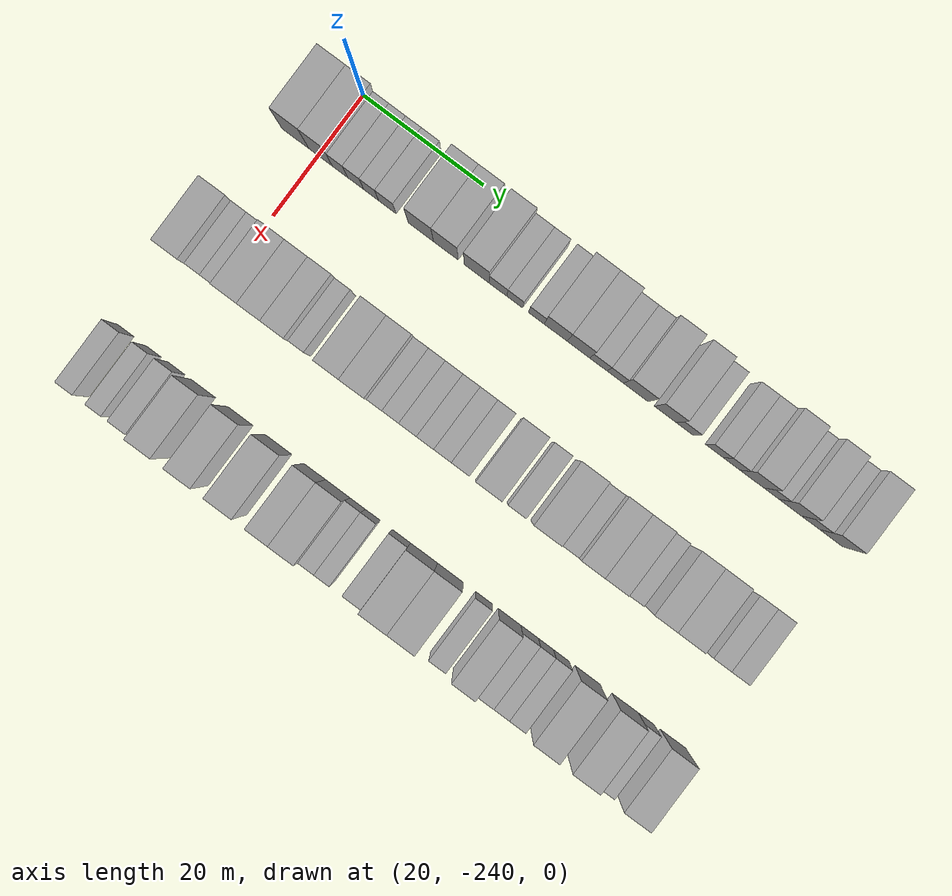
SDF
<sdf version="1.6">
 <world name="default">
  <model name="building_1">
   <static>1</static>
   <pose>25.0000 -243.7669 0 0.000000 0.000000 0.000000</pose>
   <link name="link">
    <pose>0 0 4.50 0 0 0</pose>
    <collision name="collision"><geometry><box><size>10.0000 4.4663 9.0000</size></box></geometry></collision>
    <visual name="visual">
     <cast_shadows>0</cast_shadows>
     <geometry><box><size>10.0000 4.4663 9.0000</size></box></geometry>
     <material>
      <script>
       <uri>model://HANNAS_wall/materials/scripts</uri>
       <uri>model://HANNAS_wall/materials/textures</uri>
       <name>vrc/HANNAS_wall</name>
      </script>
     </material>
    </visual>
   </link>
  </model>
  <model name="building_2">
   <static>1</static>
   <pose>25.0000 -239.5930 0 0.000000 0.000000 0.000000</pose>
   <link name="link">
    <pose>0 0 4.50 0 0 0</pose>
    <collision name="collision"><geometry><box><size>10.0000 3.8815 9.0000</size></box></geometry></collision>
    <visual name="visual">
     <cast_shadows>0</cast_shadows>
     <geometry><box><size>10.0000 3.8815 9.0000</size></box></geometry>
     <material>
      <script>
       <uri>model://HANNAS_wall/materials/scripts</uri>
       <uri>model://HANNAS_wall/materials/textures</uri>
       <name>vrc/HANNAS_wall</name>
      </script>
     </material>
    </visual>
   </link>
  </model>
  <model name="building_3">
   <static>1</static>
   <pose>25.0000 -236.3804 0 0.000000 0.000000 0.000000</pose>
   <link name="link">
    <pose>0 0 3.00 0 0 0</pose>
    <collision name="collision"><geometry><box><size>10.0000 2.5437 6.0000</size></box></geometry></collision>
    <visual name="visual">
     <cast_shadows>0</cast_shadows>
     <geometry><box><size>10.0000 2.5437 6.0000</size></box></geometry>
     <material>
      <script>
       <uri>model://HANNAS_wall/materials/scripts</uri>
       <uri>model://HANNAS_wall/materials/textures</uri>
       <name>vrc/HANNAS_wall</name>
      </script>
     </material>
    </visual>
   </link>
  </model>
  <model name="building_4">
   <static>1</static>
   <pose>25.0000 -233.7619 0 0.000000 0.000000 0.000000</pose>
   <link name="link">
    <pose>0 0 3.00 0 0 0</pose>
    <collision name="collision"><geometry><box><size>10.0000 2.6932 6.0000</size></box></geometry></collision>
    <visual name="visual">
     <cast_shadows>0</cast_shadows>
     <geometry><box><size>10.0000 2.6932 6.0000</size></box></geometry>
     <material>
      <script>
       <uri>model://HANNAS_wall/materials/scripts</uri>
       <uri>model://HANNAS_wall/materials/textures</uri>
       <name>vrc/HANNAS_wall</name>
      </script>
     </material>
    </visual>
   </link>
  </model>
  <model name="building_5">
   <static>1</static>
   <pose>25.0000 -231.1787 0 0.000000 0.000000 0.000000</pose>
   <link name="link">
    <pose>0 0 3.00 0 0 0</pose>
    <collision name="collision"><geometry><box><size>10.0000 2.4733 6.0000</size></box></geometry></collision>
    <visual name="visual">
     <cast_shadows>0</cast_shadows>
     <geometry><box><size>10.0000 2.4733 6.0000</size></box></geometry>
     <material>
      <script>
       <uri>model://HANNAS_wall/materials/scripts</uri>
       <uri>model://HANNAS_wall/materials/textures</uri>
       <name>vrc/HANNAS_wall</name>
      </script>
     </material>
    </visual>
   </link>
  </model>
  <model name="building_6">
   <static>1</static>
   <pose>25.0000 -228.4949 0 0.000000 0.000000 0.000000</pose>
   <link name="link">
    <pose>0 0 3.00 0 0 0</pose>
    <collision name="collision"><geometry><box><size>10.0000 2.8942 6.0000</size></box></geometry></collision>
    <visual name="visual">
     <cast_shadows>0</cast_shadows>
     <geometry><box><size>10.0000 2.8942 6.0000</size></box></geometry>
     <material>
      <script>
       <uri>model://HANNAS_wall/materials/scripts</uri>
       <uri>model://HANNAS_wall/materials/textures</uri>
       <name>vrc/HANNAS_wall</name>
      </script>
     </material>
    </visual>
   </link>
  </model>
  <model name="building_7">
   <static>1</static>
   <pose>25.0000 -222.9407 0 0.000000 0.000000 0.000000</pose>
   <link name="link">
    <pose>0 0 4.50 0 0 0</pose>
    <collision name="collision"><geometry><box><size>10.0000 4.2143 9.0000</size></box></geometry></collision>
    <visual name="visual">
     <cast_shadows>0</cast_shadows>
     <geometry><box><size>10.0000 4.2143 9.0000</size></box></geometry>
     <material>
      <script>
       <uri>model://HANNAS_wall/materials/scripts</uri>
       <uri>model://HANNAS_wall/materials/textures</uri>
       <name>vrc/HANNAS_wall</name>
      </script>
     </material>
    </visual>
   </link>
  </model>
  <model name="building_8">
   <static>1</static>
   <pose>25.0000 -218.7890 0 0.000000 0.000000 0.000000</pose>
   <link name="link">
    <pose>0 0 4.50 0 0 0</pose>
    <collision name="collision"><geometry><box><size>10.0000 4.0890 9.0000</size></box></geometry></collision>
    <visual name="visual">
     <cast_shadows>0</cast_shadows>
     <geometry><box><size>10.0000 4.0890 9.0000</size></box></geometry>
     <material>
      <script>
       <uri>model://HANNAS_wall/materials/scripts</uri>
       <uri>model://HANNAS_wall/materials/textures</uri>
       <name>vrc/HANNAS_wall</name>
      </script>
     </material>
    </visual>
   </link>
  </model>
  <model name="building_9">
   <static>1</static>
   <pose>25.0000 -213.6994 0 0.000000 0.000000 0.000000</pose>
   <link name="link">
    <pose>0 0 4.50 0 0 0</pose>
    <collision name="collision"><geometry><box><size>10.0000 4.0903 9.0000</size></box></geometry></collision>
    <visual name="visual">
     <cast_shadows>0</cast_shadows>
     <geometry><box><size>10.0000 4.0903 9.0000</size></box></geometry>
     <material>
      <script>
       <uri>model://HANNAS_wall/materials/scripts</uri>
       <uri>model://HANNAS_wall/materials/textures</uri>
       <name>vrc/HANNAS_wall</name>
      </script>
     </material>
    </visual>
   </link>
  </model>
  <model name="building_10">
   <static>1</static>
   <pose>25.0000 -210.1707 0 0.000000 0.000000 0.000000</pose>
   <link name="link">
    <pose>0 0 3.00 0 0 0</pose>
    <collision name="collision"><geometry><box><size>10.0000 2.9671 6.0000</size></box></geometry></collision>
    <visual name="visual">
     <cast_shadows>0</cast_shadows>
     <geometry><box><size>10.0000 2.9671 6.0000</size></box></geometry>
     <material>
      <script>
       <uri>model://HANNAS_wall/materials/scripts</uri>
       <uri>model://HANNAS_wall/materials/textures</uri>
       <name>vrc/HANNAS_wall</name>
      </script>
     </material>
    </visual>
   </link>
  </model>
  <model name="building_11">
   <static>1</static>
   <pose>25.0000 -207.3888 0 0.000000 0.000000 0.000000</pose>
   <link name="link">
    <pose>0 0 3.00 0 0 0</pose>
    <collision name="collision"><geometry><box><size>10.0000 2.5969 6.0000</size></box></geometry></collision>
    <visual name="visual">
     <cast_shadows>0</cast_shadows>
     <geometry><box><size>10.0000 2.5969 6.0000</size></box></geometry>
     <material>
      <script>
       <uri>model://HANNAS_wall/materials/scripts</uri>
       <uri>model://HANNAS_wall/materials/textures</uri>
       <name>vrc/HANNAS_wall</name>
      </script>
     </material>
    </visual>
   </link>
  </model>
  <model name="building_12">
   <static>1</static>
   <pose>25.0000 -203.7824 0 0.000000 0.000000 0.000000</pose>
   <link name="link">
    <pose>0 0 3.00 0 0 0</pose>
    <collision name="collision"><geometry><box><size>10.0000 2.6159 6.0000</size></box></geometry></collision>
    <visual name="visual">
     <cast_shadows>0</cast_shadows>
     <geometry><box><size>10.0000 2.6159 6.0000</size></box></geometry>
     <material>
      <script>
       <uri>model://HANNAS_wall/materials/scripts</uri>
       <uri>model://HANNAS_wall/materials/textures</uri>
       <name>vrc/HANNAS_wall</name>
      </script>
     </material>
    </visual>
   </link>
  </model>
  <model name="building_13">
   <static>1</static>
   <pose>25.0000 -200.5745 0 0.000000 0.000000 0.000000</pose>
   <link name="link">
    <pose>0 0 4.50 0 0 0</pose>
    <collision name="collision"><geometry><box><size>10.0000 3.7997 9.0000</size></box></geometry></collision>
    <visual name="visual">
     <cast_shadows>0</cast_shadows>
     <geometry><box><size>10.0000 3.7997 9.0000</size></box></geometry>
     <material>
      <script>
       <uri>model://HANNAS_wall/materials/scripts</uri>
       <uri>model://HANNAS_wall/materials/textures</uri>
       <name>vrc/HANNAS_wall</name>
      </script>
     </material>
    </visual>
   </link>
  </model>
  <model name="building_14">
   <static>1</static>
   <pose>25.0000 -196.8106 0 0.000000 0.000000 0.000000</pose>
   <link name="link">
    <pose>0 0 4.50 0 0 0</pose>
    <collision name="collision"><geometry><box><size>10.0000 3.7281 9.0000</size></box></geometry></collision>
    <visual name="visual">
     <cast_shadows>0</cast_shadows>
     <geometry><box><size>10.0000 3.7281 9.0000</size></box></geometry>
     <material>
      <script>
       <uri>model://HANNAS_wall/materials/scripts</uri>
       <uri>model://HANNAS_wall/materials/textures</uri>
       <name>vrc/HANNAS_wall</name>
      </script>
     </material>
    </visual>
   </link>
  </model>
  <model name="building_15">
   <static>1</static>
   <pose>25.0000 -193.5161 0 0.000000 0.000000 0.000000</pose>
   <link name="link">
    <pose>0 0 3.00 0 0 0</pose>
    <collision name="collision"><geometry><box><size>10.0000 2.8609 6.0000</size></box></geometry></collision>
    <visual name="visual">
     <cast_shadows>0</cast_shadows>
     <geometry><box><size>10.0000 2.8609 6.0000</size></box></geometry>
     <material>
      <script>
       <uri>model://HANNAS_wall/materials/scripts</uri>
       <uri>model://HANNAS_wall/materials/textures</uri>
       <name>vrc/HANNAS_wall</name>
      </script>
     </material>
    </visual>
   </link>
  </model>
  <model name="building_16">
   <static>1</static>
   <pose>25.0000 -190.7070 0 0.000000 0.000000 0.000000</pose>
   <link name="link">
    <pose>0 0 3.00 0 0 0</pose>
    <collision name="collision"><geometry><box><size>10.0000 2.7572 6.0000</size></box></geometry></collision>
    <visual name="visual">
     <cast_shadows>0</cast_shadows>
     <geometry><box><size>10.0000 2.7572 6.0000</size></box></geometry>
     <material>
      <script>
       <uri>model://HANNAS_wall/materials/scripts</uri>
       <uri>model://HANNAS_wall/materials/textures</uri>
       <name>vrc/HANNAS_wall</name>
      </script>
     </material>
    </visual>
   </link>
  </model>
  <model name="building_17">
   <static>1</static>
   <pose>25.0000 -187.2753 0 0.000000 0.000000 0.000000</pose>
   <link name="link">
    <pose>0 0 4.50 0 0 0</pose>
    <collision name="collision"><geometry><box><size>10.0000 4.1063 9.0000</size></box></geometry></collision>
    <visual name="visual">
     <cast_shadows>0</cast_shadows>
     <geometry><box><size>10.0000 4.1063 9.0000</size></box></geometry>
     <material>
      <script>
       <uri>model://HANNAS_wall/materials/scripts</uri>
       <uri>model://HANNAS_wall/materials/textures</uri>
       <name>vrc/HANNAS_wall</name>
      </script>
     </material>
    </visual>
   </link>
  </model>
  <model name="building_18">
   <static>1</static>
   <pose>25.0000 -182.3998 0 0.000000 0.000000 0.000000</pose>
   <link name="link">
    <pose>0 0 4.50 0 0 0</pose>
    <collision name="collision"><geometry><box><size>10.0000 3.6447 9.0000</size></box></geometry></collision>
    <visual name="visual">
     <cast_shadows>0</cast_shadows>
     <geometry><box><size>10.0000 3.6447 9.0000</size></box></geometry>
     <material>
      <script>
       <uri>model://HANNAS_wall/materials/scripts</uri>
       <uri>model://HANNAS_wall/materials/textures</uri>
       <name>vrc/HANNAS_wall</name>
      </script>
     </material>
    </visual>
   </link>
  </model>
  <model name="building_19">
   <static>1</static>
   <pose>25.0000 -179.1549 0 0.000000 0.000000 0.000000</pose>
   <link name="link">
    <pose>0 0 3.00 0 0 0</pose>
    <collision name="collision"><geometry><box><size>10.0000 2.8449 6.0000</size></box></geometry></collision>
    <visual name="visual">
     <cast_shadows>0</cast_shadows>
     <geometry><box><size>10.0000 2.8449 6.0000</size></box></geometry>
     <material>
      <script>
       <uri>model://HANNAS_wall/materials/scripts</uri>
       <uri>model://HANNAS_wall/materials/textures</uri>
       <name>vrc/HANNAS_wall</name>
      </script>
     </material>
    </visual>
   </link>
  </model>
  <model name="building_20">
   <static>1</static>
   <pose>25.0000 -174.2485 0 0.000000 0.000000 0.000000</pose>
   <link name="link">
    <pose>0 0 3.00 0 0 0</pose>
    <collision name="collision"><geometry><box><size>10.0000 2.9680 6.0000</size></box></geometry></collision>
    <visual name="visual">
     <cast_shadows>0</cast_shadows>
     <geometry><box><size>10.0000 2.9680 6.0000</size></box></geometry>
     <material>
      <script>
       <uri>model://HANNAS_wall/materials/scripts</uri>
       <uri>model://HANNAS_wall/materials/textures</uri>
       <name>vrc/HANNAS_wall</name>
      </script>
     </material>
    </visual>
   </link>
  </model>
  <model name="building_21">
   <static>1</static>
   <pose>25.0000 -171.3698 0 0.000000 0.000000 0.000000</pose>
   <link name="link">
    <pose>0 0 3.00 0 0 0</pose>
    <collision name="collision"><geometry><box><size>10.0000 2.7893 6.0000</size></box></geometry></collision>
    <visual name="visual">
     <cast_shadows>0</cast_shadows>
     <geometry><box><size>10.0000 2.7893 6.0000</size></box></geometry>
     <material>
      <script>
       <uri>model://HANNAS_wall/materials/scripts</uri>
       <uri>model://HANNAS_wall/materials/textures</uri>
       <name>vrc/HANNAS_wall</name>
      </script>
     </material>
    </visual>
   </link>
  </model>
  <model name="building_22">
   <static>1</static>
   <pose>25.0000 -167.9981 0 0.000000 0.000000 0.000000</pose>
   <link name="link">
    <pose>0 0 4.50 0 0 0</pose>
    <collision name="collision"><geometry><box><size>10.0000 3.9542 9.0000</size></box></geometry></collision>
    <visual name="visual">
     <cast_shadows>0</cast_shadows>
     <geometry><box><size>10.0000 3.9542 9.0000</size></box></geometry>
     <material>
      <script>
       <uri>model://HANNAS_wall/materials/scripts</uri>
       <uri>model://HANNAS_wall/materials/textures</uri>
       <name>vrc/HANNAS_wall</name>
      </script>
     </material>
    </visual>
   </link>
  </model>
  <model name="building_23">
   <static>1</static>
   <pose>25.0000 -164.7621 0 0.000000 0.000000 0.000000</pose>
   <link name="link">
    <pose>0 0 3.00 0 0 0</pose>
    <collision name="collision"><geometry><box><size>10.0000 2.5177 6.0000</size></box></geometry></collision>
    <visual name="visual">
     <cast_shadows>0</cast_shadows>
     <geometry><box><size>10.0000 2.5177 6.0000</size></box></geometry>
     <material>
      <script>
       <uri>model://HANNAS_wall/materials/scripts</uri>
       <uri>model://HANNAS_wall/materials/textures</uri>
       <name>vrc/HANNAS_wall</name>
      </script>
     </material>
    </visual>
   </link>
  </model>
  <model name="building_24">
   <static>1</static>
   <pose>25.0000 -161.6389 0 0.000000 0.000000 0.000000</pose>
   <link name="link">
    <pose>0 0 4.50 0 0 0</pose>
    <collision name="collision"><geometry><box><size>10.0000 3.7288 9.0000</size></box></geometry></collision>
    <visual name="visual">
     <cast_shadows>0</cast_shadows>
     <geometry><box><size>10.0000 3.7288 9.0000</size></box></geometry>
     <material>
      <script>
       <uri>model://HANNAS_wall/materials/scripts</uri>
       <uri>model://HANNAS_wall/materials/textures</uri>
       <name>vrc/HANNAS_wall</name>
      </script>
     </material>
    </visual>
   </link>
  </model>
  <model name="building_25">
   <static>1</static>
   <pose>25.0000 -158.2759 0 0.000000 0.000000 0.000000</pose>
   <link name="link">
    <pose>0 0 3.00 0 0 0</pose>
    <collision name="collision"><geometry><box><size>10.0000 2.9971 6.0000</size></box></geometry></collision>
    <visual name="visual">
     <cast_shadows>0</cast_shadows>
     <geometry><box><size>10.0000 2.9971 6.0000</size></box></geometry>
     <material>
      <script>
       <uri>model://HANNAS_wall/materials/scripts</uri>
       <uri>model://HANNAS_wall/materials/textures</uri>
       <name>vrc/HANNAS_wall</name>
      </script>
     </material>
    </visual>
   </link>
  </model>
  <model name="building_26">
   <static>1</static>
   <pose>25.0000 -154.8387 0 0.000000 0.000000 0.000000</pose>
   <link name="link">
    <pose>0 0 4.50 0 0 0</pose>
    <collision name="collision"><geometry><box><size>10.0000 3.8773 9.0000</size></box></geometry></collision>
    <visual name="visual">
     <cast_shadows>0</cast_shadows>
     <geometry><box><size>10.0000 3.8773 9.0000</size></box></geometry>
     <material>
      <script>
       <uri>model://HANNAS_wall/materials/scripts</uri>
       <uri>model://HANNAS_wall/materials/textures</uri>
       <name>vrc/HANNAS_wall</name>
      </script>
     </material>
    </visual>
   </link>
  </model>
  <model name="building_135">
   <static>1</static>
   <pose>47.0000 -245.9237 0 0.000000 0.000000 0.000000</pose>
   <link name="link">
    <pose>0 0 4.50 0 0 0</pose>
    <collision name="collision"><geometry><box><size>10.0000 4.1527 9.0000</size></box></geometry></collision>
    <visual name="visual">
     <cast_shadows>0</cast_shadows>
     <geometry><box><size>10.0000 4.1527 9.0000</size></box></geometry>
     <material>
      <script>
       <uri>model://HANNAS_wall/materials/scripts</uri>
       <uri>model://HANNAS_wall/materials/textures</uri>
       <name>vrc/HANNAS_wall</name>
      </script>
     </material>
    </visual>
   </link>
  </model>
  <model name="building_136">
   <static>1</static>
   <pose>47.0000 -242.6167 0 0.000000 0.000000 0.000000</pose>
   <link name="link">
    <pose>0 0 3.00 0 0 0</pose>
    <collision name="collision"><geometry><box><size>10.0000 2.4612 6.0000</size></box></geometry></collision>
    <visual name="visual">
     <cast_shadows>0</cast_shadows>
     <geometry><box><size>10.0000 2.4612 6.0000</size></box></geometry>
     <material>
      <script>
       <uri>model://HANNAS_wall/materials/scripts</uri>
       <uri>model://HANNAS_wall/materials/textures</uri>
       <name>vrc/HANNAS_wall</name>
      </script>
     </material>
    </visual>
   </link>
  </model>
  <model name="building_137">
   <static>1</static>
   <pose>47.0000 -240.0823 0 0.000000 0.000000 0.000000</pose>
   <link name="link">
    <pose>0 0 3.00 0 0 0</pose>
    <collision name="collision"><geometry><box><size>10.0000 2.6075 6.0000</size></box></geometry></collision>
    <visual name="visual">
     <cast_shadows>0</cast_shadows>
     <geometry><box><size>10.0000 2.6075 6.0000</size></box></geometry>
     <material>
      <script>
       <uri>model://HANNAS_wall/materials/scripts</uri>
       <uri>model://HANNAS_wall/materials/textures</uri>
       <name>vrc/HANNAS_wall</name>
      </script>
     </material>
    </visual>
   </link>
  </model>
  <model name="building_138">
   <static>1</static>
   <pose>47.0000 -236.7155 0 0.000000 0.000000 0.000000</pose>
   <link name="link">
    <pose>0 0 4.50 0 0 0</pose>
    <collision name="collision"><geometry><box><size>10.0000 4.1261 9.0000</size></box></geometry></collision>
    <visual name="visual">
     <cast_shadows>0</cast_shadows>
     <geometry><box><size>10.0000 4.1261 9.0000</size></box></geometry>
     <material>
      <script>
       <uri>model://HANNAS_wall/materials/scripts</uri>
       <uri>model://HANNAS_wall/materials/textures</uri>
       <name>vrc/HANNAS_wall</name>
      </script>
     </material>
    </visual>
   </link>
  </model>
  <model name="building_139">
   <static>1</static>
   <pose>47.0000 -232.8377 0 0.000000 0.000000 0.000000</pose>
   <link name="link">
    <pose>0 0 4.50 0 0 0</pose>
    <collision name="collision"><geometry><box><size>10.0000 3.6295 9.0000</size></box></geometry></collision>
    <visual name="visual">
     <cast_shadows>0</cast_shadows>
     <geometry><box><size>10.0000 3.6295 9.0000</size></box></geometry>
     <material>
      <script>
       <uri>model://HANNAS_wall/materials/scripts</uri>
       <uri>model://HANNAS_wall/materials/textures</uri>
       <name>vrc/HANNAS_wall</name>
      </script>
     </material>
    </visual>
   </link>
  </model>
  <model name="building_140">
   <static>1</static>
   <pose>47.0000 -229.1836 0 0.000000 0.000000 0.000000</pose>
   <link name="link">
    <pose>0 0 4.50 0 0 0</pose>
    <collision name="collision"><geometry><box><size>10.0000 3.6787 9.0000</size></box></geometry></collision>
    <visual name="visual">
     <cast_shadows>0</cast_shadows>
     <geometry><box><size>10.0000 3.6787 9.0000</size></box></geometry>
     <material>
      <script>
       <uri>model://HANNAS_wall/materials/scripts</uri>
       <uri>model://HANNAS_wall/materials/textures</uri>
       <name>vrc/HANNAS_wall</name>
      </script>
     </material>
    </visual>
   </link>
  </model>
  <model name="building_141">
   <static>1</static>
   <pose>47.0000 -226.0764 0 0.000000 0.000000 0.000000</pose>
   <link name="link">
    <pose>0 0 3.00 0 0 0</pose>
    <collision name="collision"><geometry><box><size>10.0000 2.5358 6.0000</size></box></geometry></collision>
    <visual name="visual">
     <cast_shadows>0</cast_shadows>
     <geometry><box><size>10.0000 2.5358 6.0000</size></box></geometry>
     <material>
      <script>
       <uri>model://HANNAS_wall/materials/scripts</uri>
       <uri>model://HANNAS_wall/materials/textures</uri>
       <name>vrc/HANNAS_wall</name>
      </script>
     </material>
    </visual>
   </link>
  </model>
  <model name="building_142">
   <static>1</static>
   <pose>47.0000 -220.7970 0 0.000000 0.000000 0.000000</pose>
   <link name="link">
    <pose>0 0 4.50 0 0 0</pose>
    <collision name="collision"><geometry><box><size>10.0000 4.0230 9.0000</size></box></geometry></collision>
    <visual name="visual">
     <cast_shadows>0</cast_shadows>
     <geometry><box><size>10.0000 4.0230 9.0000</size></box></geometry>
     <material>
      <script>
       <uri>model://HANNAS_wall/materials/scripts</uri>
       <uri>model://HANNAS_wall/materials/textures</uri>
       <name>vrc/HANNAS_wall</name>
      </script>
     </material>
    </visual>
   </link>
  </model>
  <model name="building_143">
   <static>1</static>
   <pose>47.0000 -216.7919 0 0.000000 0.000000 0.000000</pose>
   <link name="link">
    <pose>0 0 4.50 0 0 0</pose>
    <collision name="collision"><geometry><box><size>10.0000 3.9870 9.0000</size></box></geometry></collision>
    <visual name="visual">
     <cast_shadows>0</cast_shadows>
     <geometry><box><size>10.0000 3.9870 9.0000</size></box></geometry>
     <material>
      <script>
       <uri>model://HANNAS_wall/materials/scripts</uri>
       <uri>model://HANNAS_wall/materials/textures</uri>
       <name>vrc/HANNAS_wall</name>
      </script>
     </material>
    </visual>
   </link>
  </model>
  <model name="building_144">
   <static>1</static>
   <pose>47.0000 -213.5861 0 0.000000 0.000000 0.000000</pose>
   <link name="link">
    <pose>0 0 3.00 0 0 0</pose>
    <collision name="collision"><geometry><box><size>10.0000 2.4246 6.0000</size></box></geometry></collision>
    <visual name="visual">
     <cast_shadows>0</cast_shadows>
     <geometry><box><size>10.0000 2.4246 6.0000</size></box></geometry>
     <material>
      <script>
       <uri>model://HANNAS_wall/materials/scripts</uri>
       <uri>model://HANNAS_wall/materials/textures</uri>
       <name>vrc/HANNAS_wall</name>
      </script>
     </material>
    </visual>
   </link>
  </model>
  <model name="building_145">
   <static>1</static>
   <pose>47.0000 -211.0341 0 0.000000 0.000000 0.000000</pose>
   <link name="link">
    <pose>0 0 3.00 0 0 0</pose>
    <collision name="collision"><geometry><box><size>10.0000 2.6795 6.0000</size></box></geometry></collision>
    <visual name="visual">
     <cast_shadows>0</cast_shadows>
     <geometry><box><size>10.0000 2.6795 6.0000</size></box></geometry>
     <material>
      <script>
       <uri>model://HANNAS_wall/materials/scripts</uri>
       <uri>model://HANNAS_wall/materials/textures</uri>
       <name>vrc/HANNAS_wall</name>
      </script>
     </material>
    </visual>
   </link>
  </model>
  <model name="building_146">
   <static>1</static>
   <pose>47.0000 -208.2802 0 0.000000 0.000000 0.000000</pose>
   <link name="link">
    <pose>0 0 3.00 0 0 0</pose>
    <collision name="collision"><geometry><box><size>10.0000 2.8284 6.0000</size></box></geometry></collision>
    <visual name="visual">
     <cast_shadows>0</cast_shadows>
     <geometry><box><size>10.0000 2.8284 6.0000</size></box></geometry>
     <material>
      <script>
       <uri>model://HANNAS_wall/materials/scripts</uri>
       <uri>model://HANNAS_wall/materials/textures</uri>
       <name>vrc/HANNAS_wall</name>
      </script>
     </material>
    </visual>
   </link>
  </model>
  <model name="building_147">
   <static>1</static>
   <pose>47.0000 -205.4920 0 0.000000 0.000000 0.000000</pose>
   <link name="link">
    <pose>0 0 3.00 0 0 0</pose>
    <collision name="collision"><geometry><box><size>10.0000 2.7480 6.0000</size></box></geometry></collision>
    <visual name="visual">
     <cast_shadows>0</cast_shadows>
     <geometry><box><size>10.0000 2.7480 6.0000</size></box></geometry>
     <material>
      <script>
       <uri>model://HANNAS_wall/materials/scripts</uri>
       <uri>model://HANNAS_wall/materials/textures</uri>
       <name>vrc/HANNAS_wall</name>
      </script>
     </material>
    </visual>
   </link>
  </model>
  <model name="building_148">
   <static>1</static>
   <pose>47.0000 -202.7082 0 0.000000 0.000000 0.000000</pose>
   <link name="link">
    <pose>0 0 3.00 0 0 0</pose>
    <collision name="collision"><geometry><box><size>10.0000 2.8196 6.0000</size></box></geometry></collision>
    <visual name="visual">
     <cast_shadows>0</cast_shadows>
     <geometry><box><size>10.0000 2.8196 6.0000</size></box></geometry>
     <material>
      <script>
       <uri>model://HANNAS_wall/materials/scripts</uri>
       <uri>model://HANNAS_wall/materials/textures</uri>
       <name>vrc/HANNAS_wall</name>
      </script>
     </material>
    </visual>
   </link>
  </model>
  <model name="building_149">
   <static>1</static>
   <pose>47.0000 -199.8528 0 0.000000 0.000000 0.000000</pose>
   <link name="link">
    <pose>0 0 3.00 0 0 0</pose>
    <collision name="collision"><geometry><box><size>10.0000 2.8913 6.0000</size></box></geometry></collision>
    <visual name="visual">
     <cast_shadows>0</cast_shadows>
     <geometry><box><size>10.0000 2.8913 6.0000</size></box></geometry>
     <material>
      <script>
       <uri>model://HANNAS_wall/materials/scripts</uri>
       <uri>model://HANNAS_wall/materials/textures</uri>
       <name>vrc/HANNAS_wall</name>
      </script>
     </material>
    </visual>
   </link>
  </model>
  <model name="building_150">
   <static>1</static>
   <pose>47.0000 -195.3337 0 0.000000 0.000000 0.000000</pose>
   <link name="link">
    <pose>0 0 4.50 0 0 0</pose>
    <collision name="collision"><geometry><box><size>10.0000 4.1470 9.0000</size></box></geometry></collision>
    <visual name="visual">
     <cast_shadows>0</cast_shadows>
     <geometry><box><size>10.0000 4.1470 9.0000</size></box></geometry>
     <material>
      <script>
       <uri>model://HANNAS_wall/materials/scripts</uri>
       <uri>model://HANNAS_wall/materials/textures</uri>
       <name>vrc/HANNAS_wall</name>
      </script>
     </material>
    </visual>
   </link>
  </model>
  <model name="building_151">
   <static>1</static>
   <pose>47.0000 -190.7952 0 0.000000 0.000000 0.000000</pose>
   <link name="link">
    <pose>0 0 3.00 0 0 0</pose>
    <collision name="collision"><geometry><box><size>10.0000 2.9300 6.0000</size></box></geometry></collision>
    <visual name="visual">
     <cast_shadows>0</cast_shadows>
     <geometry><box><size>10.0000 2.9300 6.0000</size></box></geometry>
     <material>
      <script>
       <uri>model://HANNAS_wall/materials/scripts</uri>
       <uri>model://HANNAS_wall/materials/textures</uri>
       <name>vrc/HANNAS_wall</name>
      </script>
     </material>
    </visual>
   </link>
  </model>
  <model name="building_152">
   <static>1</static>
   <pose>47.0000 -186.1048 0 0.000000 0.000000 0.000000</pose>
   <link name="link">
    <pose>0 0 4.50 0 0 0</pose>
    <collision name="collision"><geometry><box><size>10.0000 4.4508 9.0000</size></box></geometry></collision>
    <visual name="visual">
     <cast_shadows>0</cast_shadows>
     <geometry><box><size>10.0000 4.4508 9.0000</size></box></geometry>
     <material>
      <script>
       <uri>model://HANNAS_wall/materials/scripts</uri>
       <uri>model://HANNAS_wall/materials/textures</uri>
       <name>vrc/HANNAS_wall</name>
      </script>
     </material>
    </visual>
   </link>
  </model>
  <model name="building_153">
   <static>1</static>
   <pose>47.0000 -182.3910 0 0.000000 0.000000 0.000000</pose>
   <link name="link">
    <pose>0 0 3.00 0 0 0</pose>
    <collision name="collision"><geometry><box><size>10.0000 2.9768 6.0000</size></box></geometry></collision>
    <visual name="visual">
     <cast_shadows>0</cast_shadows>
     <geometry><box><size>10.0000 2.9768 6.0000</size></box></geometry>
     <material>
      <script>
       <uri>model://HANNAS_wall/materials/scripts</uri>
       <uri>model://HANNAS_wall/materials/textures</uri>
       <name>vrc/HANNAS_wall</name>
      </script>
     </material>
    </visual>
   </link>
  </model>
  <model name="building_154">
   <static>1</static>
   <pose>47.0000 -179.0634 0 0.000000 0.000000 0.000000</pose>
   <link name="link">
    <pose>0 0 4.50 0 0 0</pose>
    <collision name="collision"><geometry><box><size>10.0000 3.6784 9.0000</size></box></geometry></collision>
    <visual name="visual">
     <cast_shadows>0</cast_shadows>
     <geometry><box><size>10.0000 3.6784 9.0000</size></box></geometry>
     <material>
      <script>
       <uri>model://HANNAS_wall/materials/scripts</uri>
       <uri>model://HANNAS_wall/materials/textures</uri>
       <name>vrc/HANNAS_wall</name>
      </script>
     </material>
    </visual>
   </link>
  </model>
  <model name="building_155">
   <static>1</static>
   <pose>47.0000 -175.3614 0 0.000000 0.000000 0.000000</pose>
   <link name="link">
    <pose>0 0 4.50 0 0 0</pose>
    <collision name="collision"><geometry><box><size>10.0000 3.7257 9.0000</size></box></geometry></collision>
    <visual name="visual">
     <cast_shadows>0</cast_shadows>
     <geometry><box><size>10.0000 3.7257 9.0000</size></box></geometry>
     <material>
      <script>
       <uri>model://HANNAS_wall/materials/scripts</uri>
       <uri>model://HANNAS_wall/materials/textures</uri>
       <name>vrc/HANNAS_wall</name>
      </script>
     </material>
    </visual>
   </link>
  </model>
  <model name="building_156">
   <static>1</static>
   <pose>47.0000 -172.0351 0 0.000000 0.000000 0.000000</pose>
   <link name="link">
    <pose>0 0 3.00 0 0 0</pose>
    <collision name="collision"><geometry><box><size>10.0000 2.9268 6.0000</size></box></geometry></collision>
    <visual name="visual">
     <cast_shadows>0</cast_shadows>
     <geometry><box><size>10.0000 2.9268 6.0000</size></box></geometry>
     <material>
      <script>
       <uri>model://HANNAS_wall/materials/scripts</uri>
       <uri>model://HANNAS_wall/materials/textures</uri>
       <name>vrc/HANNAS_wall</name>
      </script>
     </material>
    </visual>
   </link>
  </model>
  <model name="building_157">
   <static>1</static>
   <pose>47.0000 -167.7300 0 0.000000 0.000000 0.000000</pose>
   <link name="link">
    <pose>0 0 4.50 0 0 0</pose>
    <collision name="collision"><geometry><box><size>10.0000 3.6834 9.0000</size></box></geometry></collision>
    <visual name="visual">
     <cast_shadows>0</cast_shadows>
     <geometry><box><size>10.0000 3.6834 9.0000</size></box></geometry>
     <material>
      <script>
       <uri>model://HANNAS_wall/materials/scripts</uri>
       <uri>model://HANNAS_wall/materials/textures</uri>
       <name>vrc/HANNAS_wall</name>
      </script>
     </material>
    </visual>
   </link>
  </model>
  <model name="building_158">
   <static>1</static>
   <pose>47.0000 -163.7116 0 0.000000 0.000000 0.000000</pose>
   <link name="link">
    <pose>0 0 4.50 0 0 0</pose>
    <collision name="collision"><geometry><box><size>10.0000 4.3533 9.0000</size></box></geometry></collision>
    <visual name="visual">
     <cast_shadows>0</cast_shadows>
     <geometry><box><size>10.0000 4.3533 9.0000</size></box></geometry>
     <material>
      <script>
       <uri>model://HANNAS_wall/materials/scripts</uri>
       <uri>model://HANNAS_wall/materials/textures</uri>
       <name>vrc/HANNAS_wall</name>
      </script>
     </material>
    </visual>
   </link>
  </model>
  <model name="building_159">
   <static>1</static>
   <pose>47.0000 -158.0944 0 0.000000 0.000000 0.000000</pose>
   <link name="link">
    <pose>0 0 3.00 0 0 0</pose>
    <collision name="collision"><geometry><box><size>10.0000 2.8812 6.0000</size></box></geometry></collision>
    <visual name="visual">
     <cast_shadows>0</cast_shadows>
     <geometry><box><size>10.0000 2.8812 6.0000</size></box></geometry>
     <material>
      <script>
       <uri>model://HANNAS_wall/materials/scripts</uri>
       <uri>model://HANNAS_wall/materials/textures</uri>
       <name>vrc/HANNAS_wall</name>
      </script>
     </material>
    </visual>
   </link>
  </model>
  <model name="building_160">
   <static>1</static>
   <pose>47.0000 -155.1758 0 0.000000 0.000000 0.000000</pose>
   <link name="link">
    <pose>0 0 3.00 0 0 0</pose>
    <collision name="collision"><geometry><box><size>10.0000 2.9559 6.0000</size></box></geometry></collision>
    <visual name="visual">
     <cast_shadows>0</cast_shadows>
     <geometry><box><size>10.0000 2.9559 6.0000</size></box></geometry>
     <material>
      <script>
       <uri>model://HANNAS_wall/materials/scripts</uri>
       <uri>model://HANNAS_wall/materials/textures</uri>
       <name>vrc/HANNAS_wall</name>
      </script>
     </material>
    </visual>
   </link>
  </model>
  <model name="building_248">
   <static>1</static>
   <pose>69.0000 -246.6104 0 0.000000 0.000000 0.000000</pose>
   <link name="link">
    <pose>0 0 3.00 0 0 0</pose>
    <collision name="collision"><geometry><box><size>10.0000 2.7793 6.0000</size></box></geometry></collision>
    <visual name="visual">
     <cast_shadows>0</cast_shadows>
     <geometry><box><size>10.0000 2.7793 6.0000</size></box></geometry>
     <material>
      <script>
       <uri>model://HANNAS_wall/materials/scripts</uri>
       <uri>model://HANNAS_wall/materials/textures</uri>
       <name>vrc/HANNAS_wall</name>
      </script>
     </material>
    </visual>
   </link>
  </model>
  <model name="building_249">
   <static>1</static>
   <pose>69.0000 -241.9447 0 0.000000 0.000000 0.000000</pose>
   <link name="link">
    <pose>0 0 3.00 0 0 0</pose>
    <collision name="collision"><geometry><box><size>10.0000 2.5521 6.0000</size></box></geometry></collision>
    <visual name="visual">
     <cast_shadows>0</cast_shadows>
     <geometry><box><size>10.0000 2.5521 6.0000</size></box></geometry>
     <material>
      <script>
       <uri>model://HANNAS_wall/materials/scripts</uri>
       <uri>model://HANNAS_wall/materials/textures</uri>
       <name>vrc/HANNAS_wall</name>
      </script>
     </material>
    </visual>
   </link>
  </model>
  <model name="building_250">
   <static>1</static>
   <pose>69.0000 -238.2145 0 0.000000 0.000000 0.000000</pose>
   <link name="link">
    <pose>0 0 3.00 0 0 0</pose>
    <collision name="collision"><geometry><box><size>10.0000 2.9082 6.0000</size></box></geometry></collision>
    <visual name="visual">
     <cast_shadows>0</cast_shadows>
     <geometry><box><size>10.0000 2.9082 6.0000</size></box></geometry>
     <material>
      <script>
       <uri>model://HANNAS_wall/materials/scripts</uri>
       <uri>model://HANNAS_wall/materials/textures</uri>
       <name>vrc/HANNAS_wall</name>
      </script>
     </material>
    </visual>
   </link>
  </model>
  <model name="building_251">
   <static>1</static>
   <pose>69.0000 -233.7168 0 0.000000 0.000000 0.000000</pose>
   <link name="link">
    <pose>0 0 4.50 0 0 0</pose>
    <collision name="collision"><geometry><box><size>10.0000 4.0872 9.0000</size></box></geometry></collision>
    <visual name="visual">
     <cast_shadows>0</cast_shadows>
     <geometry><box><size>10.0000 4.0872 9.0000</size></box></geometry>
     <material>
      <script>
       <uri>model://HANNAS_wall/materials/scripts</uri>
       <uri>model://HANNAS_wall/materials/textures</uri>
       <name>vrc/HANNAS_wall</name>
      </script>
     </material>
    </visual>
   </link>
  </model>
  <model name="building_252">
   <static>1</static>
   <pose>69.0000 -227.5566 0 0.000000 0.000000 0.000000</pose>
   <link name="link">
    <pose>0 0 4.50 0 0 0</pose>
    <collision name="collision"><geometry><box><size>10.0000 4.2332 9.0000</size></box></geometry></collision>
    <visual name="visual">
     <cast_shadows>0</cast_shadows>
     <geometry><box><size>10.0000 4.2332 9.0000</size></box></geometry>
     <material>
      <script>
       <uri>model://HANNAS_wall/materials/scripts</uri>
       <uri>model://HANNAS_wall/materials/textures</uri>
       <name>vrc/HANNAS_wall</name>
      </script>
     </material>
    </visual>
   </link>
  </model>
  <model name="building_253">
   <static>1</static>
   <pose>69.0000 -221.2211 0 0.000000 0.000000 0.000000</pose>
   <link name="link">
    <pose>0 0 4.50 0 0 0</pose>
    <collision name="collision"><geometry><box><size>10.0000 4.4380 9.0000</size></box></geometry></collision>
    <visual name="visual">
     <cast_shadows>0</cast_shadows>
     <geometry><box><size>10.0000 4.4380 9.0000</size></box></geometry>
     <material>
      <script>
       <uri>model://HANNAS_wall/materials/scripts</uri>
       <uri>model://HANNAS_wall/materials/textures</uri>
       <name>vrc/HANNAS_wall</name>
      </script>
     </material>
    </visual>
   </link>
  </model>
  <model name="building_254">
   <static>1</static>
   <pose>69.0000 -215.1919 0 0.000000 0.000000 0.000000</pose>
   <link name="link">
    <pose>0 0 4.50 0 0 0</pose>
    <collision name="collision"><geometry><box><size>10.0000 3.6203 9.0000</size></box></geometry></collision>
    <visual name="visual">
     <cast_shadows>0</cast_shadows>
     <geometry><box><size>10.0000 3.6203 9.0000</size></box></geometry>
     <material>
      <script>
       <uri>model://HANNAS_wall/materials/scripts</uri>
       <uri>model://HANNAS_wall/materials/textures</uri>
       <name>vrc/HANNAS_wall</name>
      </script>
     </material>
    </visual>
   </link>
  </model>
  <model name="building_255">
   <static>1</static>
   <pose>69.0000 -211.3634 0 0.000000 0.000000 0.000000</pose>
   <link name="link">
    <pose>0 0 4.50 0 0 0</pose>
    <collision name="collision"><geometry><box><size>10.0000 4.0367 9.0000</size></box></geometry></collision>
    <visual name="visual">
     <cast_shadows>0</cast_shadows>
     <geometry><box><size>10.0000 4.0367 9.0000</size></box></geometry>
     <material>
      <script>
       <uri>model://HANNAS_wall/materials/scripts</uri>
       <uri>model://HANNAS_wall/materials/textures</uri>
       <name>vrc/HANNAS_wall</name>
      </script>
     </material>
    </visual>
   </link>
  </model>
  <model name="building_256">
   <static>1</static>
   <pose>69.0000 -208.0685 0 0.000000 0.000000 0.000000</pose>
   <link name="link">
    <pose>0 0 3.00 0 0 0</pose>
    <collision name="collision"><geometry><box><size>10.0000 2.5532 6.0000</size></box></geometry></collision>
    <visual name="visual">
     <cast_shadows>0</cast_shadows>
     <geometry><box><size>10.0000 2.5532 6.0000</size></box></geometry>
     <material>
      <script>
       <uri>model://HANNAS_wall/materials/scripts</uri>
       <uri>model://HANNAS_wall/materials/textures</uri>
       <name>vrc/HANNAS_wall</name>
      </script>
     </material>
    </visual>
   </link>
  </model>
  <model name="building_257">
   <static>1</static>
   <pose>69.0000 -205.5458 0 0.000000 0.000000 0.000000</pose>
   <link name="link">
    <pose>0 0 3.00 0 0 0</pose>
    <collision name="collision"><geometry><box><size>10.0000 2.4923 6.0000</size></box></geometry></collision>
    <visual name="visual">
     <cast_shadows>0</cast_shadows>
     <geometry><box><size>10.0000 2.4923 6.0000</size></box></geometry>
     <material>
      <script>
       <uri>model://HANNAS_wall/materials/scripts</uri>
       <uri>model://HANNAS_wall/materials/textures</uri>
       <name>vrc/HANNAS_wall</name>
      </script>
     </material>
    </visual>
   </link>
  </model>
  <model name="building_258">
   <static>1</static>
   <pose>69.0000 -200.8070 0 0.000000 0.000000 0.000000</pose>
   <link name="link">
    <pose>0 0 3.00 0 0 0</pose>
    <collision name="collision"><geometry><box><size>10.0000 2.9853 6.0000</size></box></geometry></collision>
    <visual name="visual">
     <cast_shadows>0</cast_shadows>
     <geometry><box><size>10.0000 2.9853 6.0000</size></box></geometry>
     <material>
      <script>
       <uri>model://HANNAS_wall/materials/scripts</uri>
       <uri>model://HANNAS_wall/materials/textures</uri>
       <name>vrc/HANNAS_wall</name>
      </script>
     </material>
    </visual>
   </link>
  </model>
  <model name="building_259">
   <static>1</static>
   <pose>69.0000 -197.0849 0 0.000000 0.000000 0.000000</pose>
   <link name="link">
    <pose>0 0 4.50 0 0 0</pose>
    <collision name="collision"><geometry><box><size>10.0000 4.4588 9.0000</size></box></geometry></collision>
    <visual name="visual">
     <cast_shadows>0</cast_shadows>
     <geometry><box><size>10.0000 4.4588 9.0000</size></box></geometry>
     <material>
      <script>
       <uri>model://HANNAS_wall/materials/scripts</uri>
       <uri>model://HANNAS_wall/materials/textures</uri>
       <name>vrc/HANNAS_wall</name>
      </script>
     </material>
    </visual>
   </link>
  </model>
  <model name="building_260">
   <static>1</static>
   <pose>69.0000 -192.6759 0 0.000000 0.000000 0.000000</pose>
   <link name="link">
    <pose>0 0 4.50 0 0 0</pose>
    <collision name="collision"><geometry><box><size>10.0000 4.3593 9.0000</size></box></geometry></collision>
    <visual name="visual">
     <cast_shadows>0</cast_shadows>
     <geometry><box><size>10.0000 4.3593 9.0000</size></box></geometry>
     <material>
      <script>
       <uri>model://HANNAS_wall/materials/scripts</uri>
       <uri>model://HANNAS_wall/materials/textures</uri>
       <name>vrc/HANNAS_wall</name>
      </script>
     </material>
    </visual>
   </link>
  </model>
  <model name="building_261">
   <static>1</static>
   <pose>69.0000 -187.1245 0 0.000000 0.000000 0.000000</pose>
   <link name="link">
    <pose>0 0 3.00 0 0 0</pose>
    <collision name="collision"><geometry><box><size>10.0000 2.7436 6.0000</size></box></geometry></collision>
    <visual name="visual">
     <cast_shadows>0</cast_shadows>
     <geometry><box><size>10.0000 2.7436 6.0000</size></box></geometry>
     <material>
      <script>
       <uri>model://HANNAS_wall/materials/scripts</uri>
       <uri>model://HANNAS_wall/materials/textures</uri>
       <name>vrc/HANNAS_wall</name>
      </script>
     </material>
    </visual>
   </link>
  </model>
  <model name="building_262">
   <static>1</static>
   <pose>69.0000 -182.8753 0 0.000000 0.000000 0.000000</pose>
   <link name="link">
    <pose>0 0 4.50 0 0 0</pose>
    <collision name="collision"><geometry><box><size>10.0000 3.7548 9.0000</size></box></geometry></collision>
    <visual name="visual">
     <cast_shadows>0</cast_shadows>
     <geometry><box><size>10.0000 3.7548 9.0000</size></box></geometry>
     <material>
      <script>
       <uri>model://HANNAS_wall/materials/scripts</uri>
       <uri>model://HANNAS_wall/materials/textures</uri>
       <name>vrc/HANNAS_wall</name>
      </script>
     </material>
    </visual>
   </link>
  </model>
  <model name="building_263">
   <static>1</static>
   <pose>69.0000 -179.5422 0 0.000000 0.000000 0.000000</pose>
   <link name="link">
    <pose>0 0 3.00 0 0 0</pose>
    <collision name="collision"><geometry><box><size>10.0000 2.9115 6.0000</size></box></geometry></collision>
    <visual name="visual">
     <cast_shadows>0</cast_shadows>
     <geometry><box><size>10.0000 2.9115 6.0000</size></box></geometry>
     <material>
      <script>
       <uri>model://HANNAS_wall/materials/scripts</uri>
       <uri>model://HANNAS_wall/materials/textures</uri>
       <name>vrc/HANNAS_wall</name>
      </script>
     </material>
    </visual>
   </link>
  </model>
  <model name="building_264">
   <static>1</static>
   <pose>69.0000 -176.8452 0 0.000000 0.000000 0.000000</pose>
   <link name="link">
    <pose>0 0 3.00 0 0 0</pose>
    <collision name="collision"><geometry><box><size>10.0000 2.4824 6.0000</size></box></geometry></collision>
    <visual name="visual">
     <cast_shadows>0</cast_shadows>
     <geometry><box><size>10.0000 2.4824 6.0000</size></box></geometry>
     <material>
      <script>
       <uri>model://HANNAS_wall/materials/scripts</uri>
       <uri>model://HANNAS_wall/materials/textures</uri>
       <name>vrc/HANNAS_wall</name>
      </script>
     </material>
    </visual>
   </link>
  </model>
  <model name="building_265">
   <static>1</static>
   <pose>69.0000 -174.2948 0 0.000000 0.000000 0.000000</pose>
   <link name="link">
    <pose>0 0 3.00 0 0 0</pose>
    <collision name="collision"><geometry><box><size>10.0000 2.6183 6.0000</size></box></geometry></collision>
    <visual name="visual">
     <cast_shadows>0</cast_shadows>
     <geometry><box><size>10.0000 2.6183 6.0000</size></box></geometry>
     <material>
      <script>
       <uri>model://HANNAS_wall/materials/scripts</uri>
       <uri>model://HANNAS_wall/materials/textures</uri>
       <name>vrc/HANNAS_wall</name>
      </script>
     </material>
    </visual>
   </link>
  </model>
  <model name="building_266">
   <static>1</static>
   <pose>69.0000 -169.9148 0 0.000000 0.000000 0.000000</pose>
   <link name="link">
    <pose>0 0 4.50 0 0 0</pose>
    <collision name="collision"><geometry><box><size>10.0000 4.1418 9.0000</size></box></geometry></collision>
    <visual name="visual">
     <cast_shadows>0</cast_shadows>
     <geometry><box><size>10.0000 4.1418 9.0000</size></box></geometry>
     <material>
      <script>
       <uri>model://HANNAS_wall/materials/scripts</uri>
       <uri>model://HANNAS_wall/materials/textures</uri>
       <name>vrc/HANNAS_wall</name>
      </script>
     </material>
    </visual>
   </link>
  </model>
  <model name="building_267">
   <static>1</static>
   <pose>69.0000 -163.6654 0 0.000000 0.000000 0.000000</pose>
   <link name="link">
    <pose>0 0 4.50 0 0 0</pose>
    <collision name="collision"><geometry><box><size>10.0000 4.3570 9.0000</size></box></geometry></collision>
    <visual name="visual">
     <cast_shadows>0</cast_shadows>
     <geometry><box><size>10.0000 4.3570 9.0000</size></box></geometry>
     <material>
      <script>
       <uri>model://HANNAS_wall/materials/scripts</uri>
       <uri>model://HANNAS_wall/materials/textures</uri>
       <name>vrc/HANNAS_wall</name>
      </script>
     </material>
    </visual>
   </link>
  </model>
  <model name="building_268">
   <static>1</static>
   <pose>69.0000 -160.1706 0 0.000000 0.000000 0.000000</pose>
   <link name="link">
    <pose>0 0 3.00 0 0 0</pose>
    <collision name="collision"><geometry><box><size>10.0000 2.6325 6.0000</size></box></geometry></collision>
    <visual name="visual">
     <cast_shadows>0</cast_shadows>
     <geometry><box><size>10.0000 2.6325 6.0000</size></box></geometry>
     <material>
      <script>
       <uri>model://HANNAS_wall/materials/scripts</uri>
       <uri>model://HANNAS_wall/materials/textures</uri>
       <name>vrc/HANNAS_wall</name>
      </script>
     </material>
    </visual>
   </link>
  </model>
  <model name="building_269">
   <static>1</static>
   <pose>69.0000 -155.7290 0 0.000000 0.000000 0.000000</pose>
   <link name="link">
    <pose>0 0 4.50 0 0 0</pose>
    <collision name="collision"><geometry><box><size>10.0000 4.2508 9.0000</size></box></geometry></collision>
    <visual name="visual">
     <cast_shadows>0</cast_shadows>
     <geometry><box><size>10.0000 4.2508 9.0000</size></box></geometry>
     <material>
      <script>
       <uri>model://HANNAS_wall/materials/scripts</uri>
       <uri>model://HANNAS_wall/materials/textures</uri>
       <name>vrc/HANNAS_wall</name>
      </script>
     </material>
    </visual>
   </link>
  </model>
 </world>
</sdf>
